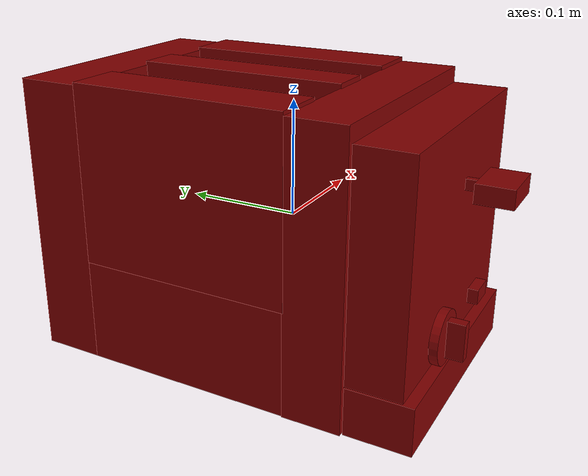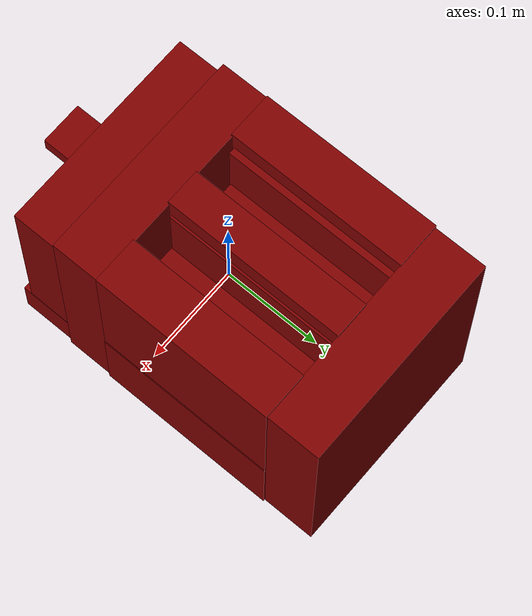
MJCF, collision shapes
<?xml version='1.0' encoding='UTF-8'?>
<mujoco model="model">
  <option timestep="0.002" gravity="0.0 0.0 -9.81"/>
  <compiler angle="radian"/>
  <asset>
    <mesh file="visuals/button_cancel.obj" name="button_cancel_vis"/>
    <mesh file="visuals/knob_doneness.obj" name="knob_doneness_vis"/>
    <mesh file="visuals/lever.obj" name="lever_vis"/>
    <mesh file="visuals/Body001.obj" name="Body001_vis"/>
    <mesh file="visuals/Body002.obj" name="Body002_vis"/>
    <texture file="visuals/T_BC001.png" name="Body001_material" type="2d"/>
    <material name="Body001_material" rgba="1 1 1 1.0" texture="Body001_material" shininess="0.4472135901451111" specular="0.4"/>
    <texture file="visuals/T_BC001.png" name="button_cancel_material" type="2d"/>
    <material name="button_cancel_material" rgba="1 1 1 1.0" texture="button_cancel_material" shininess="0.4472135901451111" specular="0.3103448502657381"/>
    <texture file="visuals/T_BC001.png" name="knob_doneness_material" type="2d"/>
    <material name="knob_doneness_material" rgba="1 1 1 1.0" texture="knob_doneness_material" shininess="0.4472135901451111" specular="0.3103448502657381"/>
    <texture file="visuals/T_BC001.png" name="lever_material" type="2d"/>
    <material name="lever_material" rgba="1 1 1 1.0" texture="lever_material" shininess="0.4472135901451111" specular="0.3103448502657381"/>
    <texture file="visuals/T_BC001.png" name="Body002_material" type="2d"/>
    <material name="Body002_material" rgba="1 1 1 1.0" texture="Body002_material" shininess="0.4472135901451111" specular="8"/>
  </asset>
  <default>
    <default class="visual">
      <geom conaffinity="0" contype="0" group="1" type="mesh"/>
    </default>
    <default class="collision_1">
      <geom group="0" rgba="0.5 0 0 0.5" solref="0.004 1" solimp="0.998 0.998 0.001"/>
    </default>
    <default class="collision_2">
      <geom group="0" rgba="0.5 0 0 0.5" solref="0.004 1" solimp="0.998 0.998 0.001"/>
    </default>
    <default class="collision_3">
      <geom group="0" rgba="0.5 0 0 0.5" solref="0.004 1" solimp="0.998 0.998 0.001"/>
    </default>
    <default class="collision_4">
      <geom group="0" rgba="0.5 0 0 0.5" solref="0.004 1" solimp="0.998 0.998 0.001"/>
    </default>
    <default class="collision_5">
      <geom group="0" rgba="0.5 0 0 0.5" solref="0.004 1" solimp="0.998 0.998 0.001"/>
    </default>
    <default class="spawn">
      <geom group="0" rgba="1 1 1 0.5" contype="0" conaffinity="0"/>
      <site group="0" rgba="1 1 1 0.5"/>
    </default>
    <default class="region">
      <geom group="1" conaffinity="0" contype="0" rgba="0 1 0 0" mass="0"/>
    </default>
  </default>
  <worldbody>
    <body>
      <body name="object">
        <geom mesh="Body001_vis" type="mesh" solimp="0.998 0.998 0.001" solref="0.001 1" friction="0.95 0.3 0.1" class="visual" material="Body001_material"/>
        <geom type="box" pos="-0.00040163908852264285 -0.07454797625541687 -0.0026495810598134995" size="0.11039051413536072 0.025103989988565445 0.12068398296833038" quat="1.0 0.0 0.0 0.0" class="collision_1"/>
        <geom type="box" pos="-0.00033332881866954267 -0.12829747796058655 -0.10284927487373352" size="0.1079176813364029 0.027681391686201096 0.02048426866531372" quat="1.0 0.0 0.0 0.0" class="collision_1"/>
        <geom type="box" pos="-0.00013809421216137707 -0.12369659543037415 0.011753419414162636" size="0.10779385268688202 0.02319900318980217 0.09309767186641693" quat="1.0 0.0 0.0 0.0" class="collision_1"/>
        <geom type="box" pos="-4.3832398660015315e-05 0.1622474044561386 -0.0023321490734815598" size="0.10977435111999512 0.027594581246376038 0.12100140750408173" quat="1.0 0.0 0.0 0.0" class="collision_1"/>
        <geom type="box" pos="0.08715267479419708 0.04248915985226631 0.044582758098840714" size="0.023920200765132904 0.09303570538759232 0.07697774469852448" quat="1.0 0.0 0.0 0.0" class="collision_1"/>
        <geom type="box" pos="0.00040275166975334287 0.04248915985226631 0.045785509049892426" size="0.01841512881219387 0.09303570538759232 0.0762452557682991" quat="1.0 0.0 0.0 0.0" class="collision_1"/>
        <geom type="box" pos="-0.08735804259777069 0.04248915985226631 0.04440835863351822" size="0.023687565699219704 0.09303570538759232 0.07680334150791168" quat="1.0 0.0 0.0 0.0" class="collision_1"/>
        <geom type="box" pos="0.00055832345969975 0.04248915985226631 -0.07616034150123596" size="0.11128278076648712 0.09303570538759232 0.04645710065960884" quat="1.0 0.0 0.0 0.0" class="collision_1"/>
        <body name="button_cancel">
          <joint axis="0.0 1.0 0.0" pos="0.039973318576812744 -0.15427303314208984 -0.05465567111968994" limited="true" name="button_cancel_joint" range="0.0 0.003" type="slide" damping="1" frictionloss="1" armature=".01" stiffness="4" springref="-1"/>
          <geom mesh="button_cancel_vis" type="mesh" solimp="0.998 0.998 0.001" solref="0.001 1" friction="0.95 0.3 0.1" class="visual" material="button_cancel_material"/>
          <geom class="collision_2" type="box" pos="0.03997264802455902 -0.1543659120798111 -0.05450146272778511" size="0.011716900393366814 0.004514594096690416 0.006439151242375374" quat="1.0 0.0 0.0 0.0" name="button_cancel_main"/>
        </body>
        <body name="knob_doneness">
          <joint axis="0.0 1.0 0.0" pos="-0.05323699861764908 -0.16145336627960205 -0.05091400071978569" limited="true" name="knob_doneness_joint" range="0.0 5.480333851262195" type="hinge" damping="0.05" armature="1" frictionloss="0.75"/>
          <geom mesh="knob_doneness_vis" type="mesh" solimp="0.998 0.998 0.001" solref="0.001 1" friction="0.95 0.3 0.1" class="visual" material="knob_doneness_material"/>
          <geom type="cylinder" pos="-0.05408919230103493 -0.1556653529405594 -0.050495218485593796" size="0.021991536021232605 0.00349594047293067" quat="0.7071067094802856 0.7071068286895752 0.0 0.0" class="collision_3" friction="100 0.5 0.01"/>
          <geom class="collision_3" type="box" pos="-0.053167667239904404 -0.16636617481708527 -0.05074932053685188" size="0.00418759835883975 0.007027548272162676 0.015308719128370285" quat="1.0 0.0 0.0 0.0" name="knob_doneness_main" friction="100 0.5 0.01"/>
        </body>
        <body name="lever">
          <joint axis="0.0 0.0 -1.0" pos="0.004132832866162062 -0.1666065901517868 0.05189010500907898" limited="true" name="lever_joint" range="0.0 0.07" type="slide" damping="1" frictionloss="1" armature=".1" stiffness="3.1" springref="-0.5"/>
          <geom class="region" name="reg_slotR" type="box" pos="0.03997350763529539 0.04362201504409313 0.11690764874219894" size="0.01617303753644228 0.08701841516792774 0.07599996572732926"/>
          <geom class="region" name="reg_slotL" type="box" pos="-0.04071805998682976 0.04362201504409313 0.11690764874219894" size="0.016339363366365434 0.08701841516792774 0.07599996572732926"/>
          <geom mesh="lever_vis" type="mesh" solimp="0.998 0.998 0.001" solref="0.001 1" friction="0.95 0.3 0.1" class="visual" material="lever_material"/>
          <geom class="collision_4" type="box" pos="0.039692290127277374 0.042644843459129333 0.037739191204309464" size="0.014999999664723873 0.08668699860572815 0.0014555646339431405" quat="1.0 0.0 0.0 0.0" name="slotR_floor"/>
          <geom class="collision_4" type="box" pos="-0.039725419133901596 0.042644843459129333 0.037739191204309464" size="0.014999999664723873 0.08665281534194946 0.0014555640518665314" quat="1.0 0.0 0.0 0.0" name="slotL_floor"/>
          <geom type="box" pos="0.003922735806554556 -0.15407340228557587 0.05132896453142166" size="0.00293411104939878 0.0066086165606975555 0.004523640498518944" quat="1.0 0.0 0.0 0.0" class="collision_4"/>
          <geom class="collision_4" type="box" pos="0.004072046838700771 -0.17476166784763336 0.05191998928785324" size="0.021971380338072777 0.015347134321928024 0.007976479828357697" quat="1.0 0.0 0.0 0.0" name="lever_handle"/>
        </body>
        <body name="Body002">
          <geom mesh="Body002_vis" type="mesh" solimp="0.998 0.998 0.001" solref="0.001 1" friction="0.95 0.3 0.1" class="visual" material="Body002_material"/>
          <geom type="box" pos="-0.06536778807640076 0.04218008741736412 0.02996710129082203" size="0.008538492023944855 0.08927945792675018 0.06763520836830139" quat="1.0 0.0 0.0 0.0" class="collision_5"/>
          <geom type="box" pos="-0.012881415896117687 0.04218008741736412 0.02996710129082203" size="0.008538492023944855 0.08927945792675018 0.06763520836830139" quat="1.0 0.0 0.0 0.0" class="collision_5"/>
          <geom type="box" pos="0.012598068453371525 0.04218008741736412 0.02996710129082203" size="0.008538492023944855 0.08927945792675018 0.06763520836830139" quat="1.0 0.0 0.0 0.0" class="collision_5"/>
          <geom type="box" pos="0.06660368293523788 0.04218008741736412 0.02996710129082203" size="0.008538492023944855 0.08927945792675018 0.06763520836830139" quat="1.0 0.0 0.0 0.0" class="collision_5"/>
        </body>
        <geom class="region" name="reg_main" type="box" pos="6.395511897849815e-10 0.016735952347517014 -0.00036261463537812233" size="0.11094743555784226 0.1740860471725464 0.12266330218315125"/>
      </body>
    </body>
  </worldbody>
  <actuator>
    <motor name="button_cancel_joint_actuator" joint="button_cancel_joint" gear="0.2"/>
    <motor name="knob_doneness_joint_actuator" joint="knob_doneness_joint" gear="5"/>
    <motor name="lever_joint_actuator" joint="lever_joint" gear="1.5"/>
  </actuator>
</mujoco>
